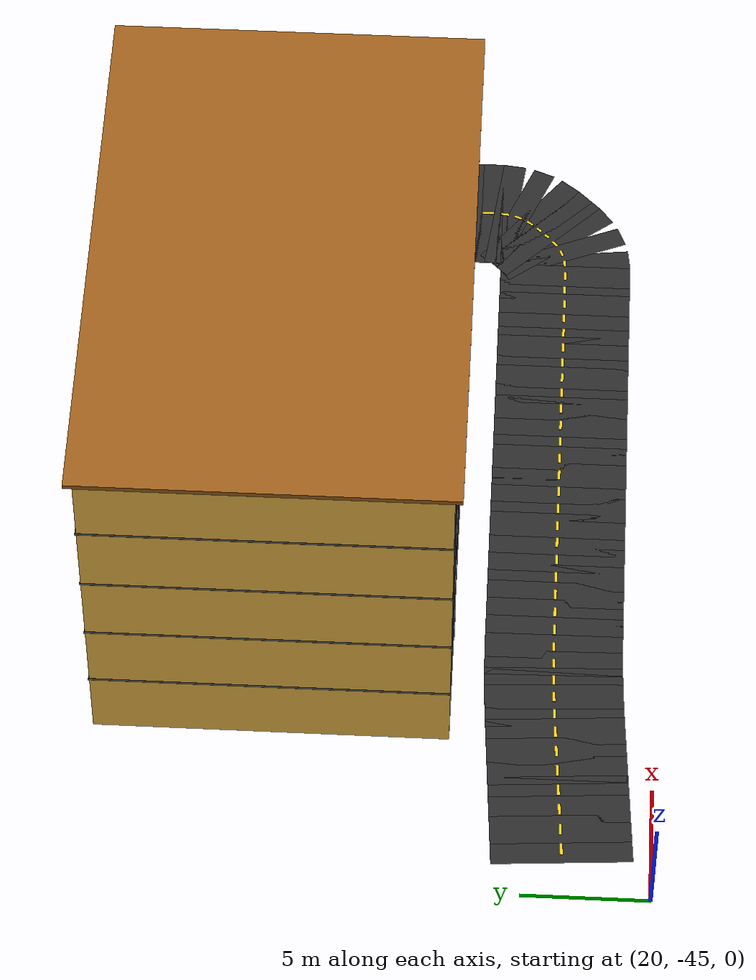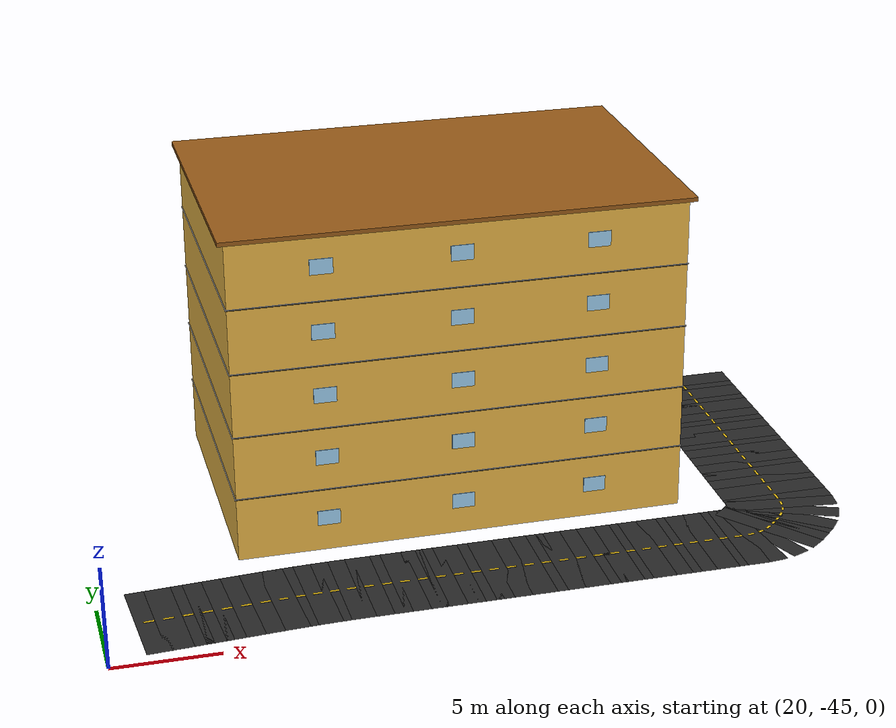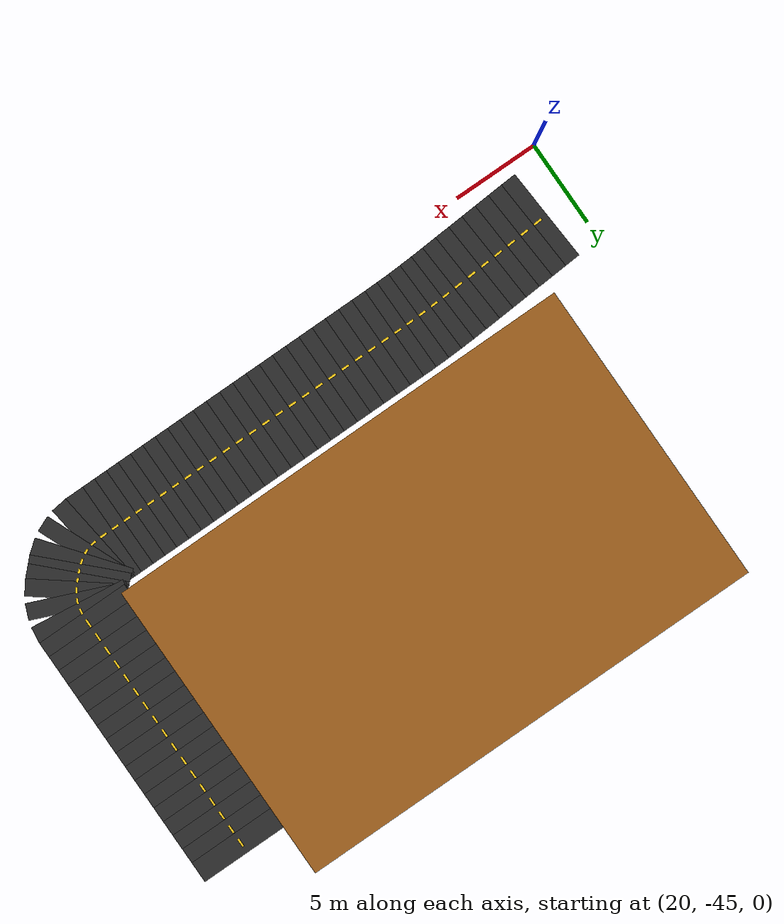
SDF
<sdf version="1.7">
 <world name="campus_delivery">
  <model name="campus_roads">
   <static>true</static>
   <link name="south_service_loop_0097">
    <pose>54.000 -23.387 0.002 0 0 -1.570796</pose>
    <visual name="visual">
     <geometry><box><size>1.239 5.500 0.004</size></box></geometry>
     <material><ambient>0.160 0.160 0.160 1.000</ambient><diffuse>0.160 0.160 0.160 1.000</diffuse></material>
    </visual>
    <visual name="center_line">
     <pose>0 0 0.008 0 0 0</pose>
     <geometry><box><size>0.489 0.120 0.012</size></box></geometry>
     <material><ambient>0.950 0.780 0.080 1.000</ambient><diffuse>0.950 0.780 0.080 1.000</diffuse></material>
    </visual>
   </link>
   <link name="south_service_loop_0098">
    <pose>54.000 -24.276 0.002 0 0 -1.570796</pose>
    <visual name="visual">
     <geometry><box><size>1.239 5.500 0.004</size></box></geometry>
     <material><ambient>0.160 0.160 0.160 1.000</ambient><diffuse>0.160 0.160 0.160 1.000</diffuse></material>
    </visual>
    <visual name="center_line">
     <pose>0 0 0.008 0 0 0</pose>
     <geometry><box><size>0.489 0.120 0.012</size></box></geometry>
     <material><ambient>0.950 0.780 0.080 1.000</ambient><diffuse>0.950 0.780 0.080 1.000</diffuse></material>
    </visual>
   </link>
   <link name="south_service_loop_0099">
    <pose>54.000 -25.166 0.002 0 0 -1.570796</pose>
    <visual name="visual">
     <geometry><box><size>1.239 5.500 0.004</size></box></geometry>
     <material><ambient>0.160 0.160 0.160 1.000</ambient><diffuse>0.160 0.160 0.160 1.000</diffuse></material>
    </visual>
    <visual name="center_line">
     <pose>0 0 0.008 0 0 0</pose>
     <geometry><box><size>0.489 0.120 0.012</size></box></geometry>
     <material><ambient>0.950 0.780 0.080 1.000</ambient><diffuse>0.950 0.780 0.080 1.000</diffuse></material>
    </visual>
   </link>
   <link name="south_service_loop_0100">
    <pose>54.000 -26.055 0.002 0 0 -1.570796</pose>
    <visual name="visual">
     <geometry><box><size>1.239 5.500 0.004</size></box></geometry>
     <material><ambient>0.160 0.160 0.160 1.000</ambient><diffuse>0.160 0.160 0.160 1.000</diffuse></material>
    </visual>
    <visual name="center_line">
     <pose>0 0 0.008 0 0 0</pose>
     <geometry><box><size>0.489 0.120 0.012</size></box></geometry>
     <material><ambient>0.950 0.780 0.080 1.000</ambient><diffuse>0.950 0.780 0.080 1.000</diffuse></material>
    </visual>
   </link>
   <link name="south_service_loop_0101">
    <pose>54.000 -26.944 0.002 0 0 -1.570796</pose>
    <visual name="visual">
     <geometry><box><size>1.239 5.500 0.004</size></box></geometry>
     <material><ambient>0.160 0.160 0.160 1.000</ambient><diffuse>0.160 0.160 0.160 1.000</diffuse></material>
    </visual>
    <visual name="center_line">
     <pose>0 0 0.008 0 0 0</pose>
     <geometry><box><size>0.489 0.120 0.012</size></box></geometry>
     <material><ambient>0.950 0.780 0.080 1.000</ambient><diffuse>0.950 0.780 0.080 1.000</diffuse></material>
    </visual>
   </link>
   <link name="south_service_loop_0102">
    <pose>54.000 -27.833 0.002 0 0 -1.570796</pose>
    <visual name="visual">
     <geometry><box><size>1.239 5.500 0.004</size></box></geometry>
     <material><ambient>0.160 0.160 0.160 1.000</ambient><diffuse>0.160 0.160 0.160 1.000</diffuse></material>
    </visual>
    <visual name="center_line">
     <pose>0 0 0.008 0 0 0</pose>
     <geometry><box><size>0.489 0.120 0.012</size></box></geometry>
     <material><ambient>0.950 0.780 0.080 1.000</ambient><diffuse>0.950 0.780 0.080 1.000</diffuse></material>
    </visual>
   </link>
   <link name="south_service_loop_0103">
    <pose>54.000 -28.722 0.002 0 0 -1.570796</pose>
    <visual name="visual">
     <geometry><box><size>1.239 5.500 0.004</size></box></geometry>
     <material><ambient>0.160 0.160 0.160 1.000</ambient><diffuse>0.160 0.160 0.160 1.000</diffuse></material>
    </visual>
    <visual name="center_line">
     <pose>0 0 0.008 0 0 0</pose>
     <geometry><box><size>0.489 0.120 0.012</size></box></geometry>
     <material><ambient>0.950 0.780 0.080 1.000</ambient><diffuse>0.950 0.780 0.080 1.000</diffuse></material>
    </visual>
   </link>
   <link name="south_service_loop_0104">
    <pose>54.000 -29.611 0.002 0 0 -1.570796</pose>
    <visual name="visual">
     <geometry><box><size>1.239 5.500 0.004</size></box></geometry>
     <material><ambient>0.160 0.160 0.160 1.000</ambient><diffuse>0.160 0.160 0.160 1.000</diffuse></material>
    </visual>
    <visual name="center_line">
     <pose>0 0 0.008 0 0 0</pose>
     <geometry><box><size>0.489 0.120 0.012</size></box></geometry>
     <material><ambient>0.950 0.780 0.080 1.000</ambient><diffuse>0.950 0.780 0.080 1.000</diffuse></material>
    </visual>
   </link>
   <link name="south_service_loop_0105">
    <pose>54.000 -30.500 0.002 0 0 -1.570796</pose>
    <visual name="visual">
     <geometry><box><size>1.239 5.500 0.004</size></box></geometry>
     <material><ambient>0.160 0.160 0.160 1.000</ambient><diffuse>0.160 0.160 0.160 1.000</diffuse></material>
    </visual>
    <visual name="center_line">
     <pose>0 0 0.008 0 0 0</pose>
     <geometry><box><size>0.489 0.120 0.012</size></box></geometry>
     <material><ambient>0.950 0.780 0.080 1.000</ambient><diffuse>0.950 0.780 0.080 1.000</diffuse></material>
    </visual>
   </link>
   <link name="south_service_loop_0106">
    <pose>54.000 -31.389 0.002 0 0 -1.570796</pose>
    <visual name="visual">
     <geometry><box><size>1.239 5.500 0.004</size></box></geometry>
     <material><ambient>0.160 0.160 0.160 1.000</ambient><diffuse>0.160 0.160 0.160 1.000</diffuse></material>
    </visual>
    <visual name="center_line">
     <pose>0 0 0.008 0 0 0</pose>
     <geometry><box><size>0.489 0.120 0.012</size></box></geometry>
     <material><ambient>0.950 0.780 0.080 1.000</ambient><diffuse>0.950 0.780 0.080 1.000</diffuse></material>
    </visual>
   </link>
   <link name="south_service_loop_0107">
    <pose>54.000 -32.278 0.002 0 0 -1.570796</pose>
    <visual name="visual">
     <geometry><box><size>1.239 5.500 0.004</size></box></geometry>
     <material><ambient>0.160 0.160 0.160 1.000</ambient><diffuse>0.160 0.160 0.160 1.000</diffuse></material>
    </visual>
    <visual name="center_line">
     <pose>0 0 0.008 0 0 0</pose>
     <geometry><box><size>0.489 0.120 0.012</size></box></geometry>
     <material><ambient>0.950 0.780 0.080 1.000</ambient><diffuse>0.950 0.780 0.080 1.000</diffuse></material>
    </visual>
   </link>
   <link name="south_service_loop_0108">
    <pose>54.000 -33.167 0.002 0 0 -1.570796</pose>
    <visual name="visual">
     <geometry><box><size>1.239 5.500 0.004</size></box></geometry>
     <material><ambient>0.160 0.160 0.160 1.000</ambient><diffuse>0.160 0.160 0.160 1.000</diffuse></material>
    </visual>
    <visual name="center_line">
     <pose>0 0 0.008 0 0 0</pose>
     <geometry><box><size>0.489 0.120 0.012</size></box></geometry>
     <material><ambient>0.950 0.780 0.080 1.000</ambient><diffuse>0.950 0.780 0.080 1.000</diffuse></material>
    </visual>
   </link>
   <link name="south_service_loop_0109">
    <pose>54.000 -34.056 0.002 0 0 -1.570796</pose>
    <visual name="visual">
     <geometry><box><size>1.239 5.500 0.004</size></box></geometry>
     <material><ambient>0.160 0.160 0.160 1.000</ambient><diffuse>0.160 0.160 0.160 1.000</diffuse></material>
    </visual>
    <visual name="center_line">
     <pose>0 0 0.008 0 0 0</pose>
     <geometry><box><size>0.489 0.120 0.012</size></box></geometry>
     <material><ambient>0.950 0.780 0.080 1.000</ambient><diffuse>0.950 0.780 0.080 1.000</diffuse></material>
    </visual>
   </link>
   <link name="south_service_loop_0110">
    <pose>54.000 -34.945 0.002 0 0 -1.570796</pose>
    <visual name="visual">
     <geometry><box><size>1.239 5.500 0.004</size></box></geometry>
     <material><ambient>0.160 0.160 0.160 1.000</ambient><diffuse>0.160 0.160 0.160 1.000</diffuse></material>
    </visual>
    <visual name="center_line">
     <pose>0 0 0.008 0 0 0</pose>
     <geometry><box><size>0.489 0.120 0.012</size></box></geometry>
     <material><ambient>0.950 0.780 0.080 1.000</ambient><diffuse>0.950 0.780 0.080 1.000</diffuse></material>
    </visual>
   </link>
   <link name="south_service_loop_0111">
    <pose>54.000 -35.834 0.002 0 0 -1.570796</pose>
    <visual name="visual">
     <geometry><box><size>1.239 5.500 0.004</size></box></geometry>
     <material><ambient>0.160 0.160 0.160 1.000</ambient><diffuse>0.160 0.160 0.160 1.000</diffuse></material>
    </visual>
    <visual name="center_line">
     <pose>0 0 0.008 0 0 0</pose>
     <geometry><box><size>0.489 0.120 0.012</size></box></geometry>
     <material><ambient>0.950 0.780 0.080 1.000</ambient><diffuse>0.950 0.780 0.080 1.000</diffuse></material>
    </visual>
   </link>
   <link name="south_service_loop_0112">
    <pose>54.000 -36.724 0.002 0 0 -1.570796</pose>
    <visual name="visual">
     <geometry><box><size>1.239 5.500 0.004</size></box></geometry>
     <material><ambient>0.160 0.160 0.160 1.000</ambient><diffuse>0.160 0.160 0.160 1.000</diffuse></material>
    </visual>
    <visual name="center_line">
     <pose>0 0 0.008 0 0 0</pose>
     <geometry><box><size>0.489 0.120 0.012</size></box></geometry>
     <material><ambient>0.950 0.780 0.080 1.000</ambient><diffuse>0.950 0.780 0.080 1.000</diffuse></material>
    </visual>
   </link>
   <link name="south_service_loop_0113">
    <pose>54.000 -37.613 0.002 0 0 -1.570796</pose>
    <visual name="visual">
     <geometry><box><size>1.239 5.500 0.004</size></box></geometry>
     <material><ambient>0.160 0.160 0.160 1.000</ambient><diffuse>0.160 0.160 0.160 1.000</diffuse></material>
    </visual>
    <visual name="center_line">
     <pose>0 0 0.008 0 0 0</pose>
     <geometry><box><size>0.489 0.120 0.012</size></box></geometry>
     <material><ambient>0.950 0.780 0.080 1.000</ambient><diffuse>0.950 0.780 0.080 1.000</diffuse></material>
    </visual>
   </link>
   <link name="south_service_loop_0114">
    <pose>53.963 -38.356 0.002 0 0 -1.694067</pose>
    <visual name="visual">
     <geometry><box><size>0.952 5.500 0.004</size></box></geometry>
     <material><ambient>0.160 0.160 0.160 1.000</ambient><diffuse>0.160 0.160 0.160 1.000</diffuse></material>
    </visual>
    <visual name="center_line">
     <pose>0 0 0.008 0 0 0</pose>
     <geometry><box><size>0.331 0.120 0.012</size></box></geometry>
     <material><ambient>0.950 0.780 0.080 1.000</ambient><diffuse>0.950 0.780 0.080 1.000</diffuse></material>
    </visual>
   </link>
   <link name="south_service_loop_0115">
    <pose>53.815 -38.923 0.002 0 0 -1.963495</pose>
    <visual name="visual">
     <geometry><box><size>0.931 5.500 0.004</size></box></geometry>
     <material><ambient>0.160 0.160 0.160 1.000</ambient><diffuse>0.160 0.160 0.160 1.000</diffuse></material>
    </visual>
    <visual name="center_line">
     <pose>0 0 0.008 0 0 0</pose>
     <geometry><box><size>0.319 0.120 0.012</size></box></geometry>
     <material><ambient>0.950 0.780 0.080 1.000</ambient><diffuse>0.950 0.780 0.080 1.000</diffuse></material>
    </visual>
   </link>
   <link name="south_service_loop_0116">
    <pose>53.519 -39.429 0.002 0 0 -2.232923</pose>
    <visual name="visual">
     <geometry><box><size>0.952 5.500 0.004</size></box></geometry>
     <material><ambient>0.160 0.160 0.160 1.000</ambient><diffuse>0.160 0.160 0.160 1.000</diffuse></material>
    </visual>
    <visual name="center_line">
     <pose>0 0 0.008 0 0 0</pose>
     <geometry><box><size>0.331 0.120 0.012</size></box></geometry>
     <material><ambient>0.950 0.780 0.080 1.000</ambient><diffuse>0.950 0.780 0.080 1.000</diffuse></material>
    </visual>
   </link>
   <link name="south_service_loop_0117">
    <pose>53.167 -39.833 0.002 0 0 -2.356194</pose>
    <visual name="visual">
     <geometry><box><size>0.821 5.500 0.004</size></box></geometry>
     <material><ambient>0.160 0.160 0.160 1.000</ambient><diffuse>0.160 0.160 0.160 1.000</diffuse></material>
    </visual>
    <visual name="center_line">
     <pose>0 0 0.008 0 0 0</pose>
     <geometry><box><size>0.259 0.120 0.012</size></box></geometry>
     <material><ambient>0.950 0.780 0.080 1.000</ambient><diffuse>0.950 0.780 0.080 1.000</diffuse></material>
    </visual>
   </link>
   <link name="south_service_loop_0118">
    <pose>52.833 -40.167 0.002 0 0 -2.356194</pose>
    <visual name="visual">
     <geometry><box><size>0.821 5.500 0.004</size></box></geometry>
     <material><ambient>0.160 0.160 0.160 1.000</ambient><diffuse>0.160 0.160 0.160 1.000</diffuse></material>
    </visual>
    <visual name="center_line">
     <pose>0 0 0.008 0 0 0</pose>
     <geometry><box><size>0.259 0.120 0.012</size></box></geometry>
     <material><ambient>0.950 0.780 0.080 1.000</ambient><diffuse>0.950 0.780 0.080 1.000</diffuse></material>
    </visual>
   </link>
   <link name="south_service_loop_0119">
    <pose>52.429 -40.519 0.002 0 0 -2.479466</pose>
    <visual name="visual">
     <geometry><box><size>0.952 5.500 0.004</size></box></geometry>
     <material><ambient>0.160 0.160 0.160 1.000</ambient><diffuse>0.160 0.160 0.160 1.000</diffuse></material>
    </visual>
    <visual name="center_line">
     <pose>0 0 0.008 0 0 0</pose>
     <geometry><box><size>0.331 0.120 0.012</size></box></geometry>
     <material><ambient>0.950 0.780 0.080 1.000</ambient><diffuse>0.950 0.780 0.080 1.000</diffuse></material>
    </visual>
   </link>
   <link name="south_service_loop_0120">
    <pose>51.923 -40.815 0.002 0 0 -2.748894</pose>
    <visual name="visual">
     <geometry><box><size>0.931 5.500 0.004</size></box></geometry>
     <material><ambient>0.160 0.160 0.160 1.000</ambient><diffuse>0.160 0.160 0.160 1.000</diffuse></material>
    </visual>
    <visual name="center_line">
     <pose>0 0 0.008 0 0 0</pose>
     <geometry><box><size>0.319 0.120 0.012</size></box></geometry>
     <material><ambient>0.950 0.780 0.080 1.000</ambient><diffuse>0.950 0.780 0.080 1.000</diffuse></material>
    </visual>
   </link>
   <link name="south_service_loop_0121">
    <pose>51.356 -40.963 0.002 0 0 -3.018322</pose>
    <visual name="visual">
     <geometry><box><size>0.952 5.500 0.004</size></box></geometry>
     <material><ambient>0.160 0.160 0.160 1.000</ambient><diffuse>0.160 0.160 0.160 1.000</diffuse></material>
    </visual>
    <visual name="center_line">
     <pose>0 0 0.008 0 0 0</pose>
     <geometry><box><size>0.331 0.120 0.012</size></box></geometry>
     <material><ambient>0.950 0.780 0.080 1.000</ambient><diffuse>0.950 0.780 0.080 1.000</diffuse></material>
    </visual>
   </link>
   <link name="south_service_loop_0122">
    <pose>50.675 -41.000 0.002 0 0 3.141593</pose>
    <visual name="visual">
     <geometry><box><size>1.114 5.500 0.004</size></box></geometry>
     <material><ambient>0.160 0.160 0.160 1.000</ambient><diffuse>0.160 0.160 0.160 1.000</diffuse></material>
    </visual>
    <visual name="center_line">
     <pose>0 0 0.008 0 0 0</pose>
     <geometry><box><size>0.420 0.120 0.012</size></box></geometry>
     <material><ambient>0.950 0.780 0.080 1.000</ambient><diffuse>0.950 0.780 0.080 1.000</diffuse></material>
    </visual>
   </link>
   <link name="south_service_loop_0123">
    <pose>49.911 -41.000 0.002 0 0 3.141593</pose>
    <visual name="visual">
     <geometry><box><size>1.114 5.500 0.004</size></box></geometry>
     <material><ambient>0.160 0.160 0.160 1.000</ambient><diffuse>0.160 0.160 0.160 1.000</diffuse></material>
    </visual>
    <visual name="center_line">
     <pose>0 0 0.008 0 0 0</pose>
     <geometry><box><size>0.420 0.120 0.012</size></box></geometry>
     <material><ambient>0.950 0.780 0.080 1.000</ambient><diffuse>0.950 0.780 0.080 1.000</diffuse></material>
    </visual>
   </link>
   <link name="south_service_loop_0124">
    <pose>49.146 -41.000 0.002 0 0 3.141593</pose>
    <visual name="visual">
     <geometry><box><size>1.114 5.500 0.004</size></box></geometry>
     <material><ambient>0.160 0.160 0.160 1.000</ambient><diffuse>0.160 0.160 0.160 1.000</diffuse></material>
    </visual>
    <visual name="center_line">
     <pose>0 0 0.008 0 0 0</pose>
     <geometry><box><size>0.420 0.120 0.012</size></box></geometry>
     <material><ambient>0.950 0.780 0.080 1.000</ambient><diffuse>0.950 0.780 0.080 1.000</diffuse></material>
    </visual>
   </link>
   <link name="south_service_loop_0125">
    <pose>48.382 -41.000 0.002 0 0 3.141593</pose>
    <visual name="visual">
     <geometry><box><size>1.114 5.500 0.004</size></box></geometry>
     <material><ambient>0.160 0.160 0.160 1.000</ambient><diffuse>0.160 0.160 0.160 1.000</diffuse></material>
    </visual>
    <visual name="center_line">
     <pose>0 0 0.008 0 0 0</pose>
     <geometry><box><size>0.420 0.120 0.012</size></box></geometry>
     <material><ambient>0.950 0.780 0.080 1.000</ambient><diffuse>0.950 0.780 0.080 1.000</diffuse></material>
    </visual>
   </link>
   <link name="south_service_loop_0126">
    <pose>47.600 -41.000 0.002 0 0 -3.141593</pose>
    <visual name="visual">
     <geometry><box><size>1.150 5.500 0.004</size></box></geometry>
     <material><ambient>0.160 0.160 0.160 1.000</ambient><diffuse>0.160 0.160 0.160 1.000</diffuse></material>
    </visual>
    <visual name="center_line">
     <pose>0 0 0.008 0 0 0</pose>
     <geometry><box><size>0.440 0.120 0.012</size></box></geometry>
     <material><ambient>0.950 0.780 0.080 1.000</ambient><diffuse>0.950 0.780 0.080 1.000</diffuse></material>
    </visual>
   </link>
   <link name="south_service_loop_0127">
    <pose>46.800 -41.000 0.002 0 0 3.141593</pose>
    <visual name="visual">
     <geometry><box><size>1.150 5.500 0.004</size></box></geometry>
     <material><ambient>0.160 0.160 0.160 1.000</ambient><diffuse>0.160 0.160 0.160 1.000</diffuse></material>
    </visual>
    <visual name="center_line">
     <pose>0 0 0.008 0 0 0</pose>
     <geometry><box><size>0.440 0.120 0.012</size></box></geometry>
     <material><ambient>0.950 0.780 0.080 1.000</ambient><diffuse>0.950 0.780 0.080 1.000</diffuse></material>
    </visual>
   </link>
   <link name="south_service_loop_0128">
    <pose>46.000 -41.000 0.002 0 0 3.141593</pose>
    <visual name="visual">
     <geometry><box><size>1.150 5.500 0.004</size></box></geometry>
     <material><ambient>0.160 0.160 0.160 1.000</ambient><diffuse>0.160 0.160 0.160 1.000</diffuse></material>
    </visual>
    <visual name="center_line">
     <pose>0 0 0.008 0 0 0</pose>
     <geometry><box><size>0.440 0.120 0.012</size></box></geometry>
     <material><ambient>0.950 0.780 0.080 1.000</ambient><diffuse>0.950 0.780 0.080 1.000</diffuse></material>
    </visual>
   </link>
   <link name="south_service_loop_0129">
    <pose>45.200 -41.000 0.002 0 0 3.141593</pose>
    <visual name="visual">
     <geometry><box><size>1.150 5.500 0.004</size></box></geometry>
     <material><ambient>0.160 0.160 0.160 1.000</ambient><diffuse>0.160 0.160 0.160 1.000</diffuse></material>
    </visual>
    <visual name="center_line">
     <pose>0 0 0.008 0 0 0</pose>
     <geometry><box><size>0.440 0.120 0.012</size></box></geometry>
     <material><ambient>0.950 0.780 0.080 1.000</ambient><diffuse>0.950 0.780 0.080 1.000</diffuse></material>
    </visual>
   </link>
   <link name="south_service_loop_0130">
    <pose>44.400 -41.000 0.002 0 0 3.141593</pose>
    <visual name="visual">
     <geometry><box><size>1.150 5.500 0.004</size></box></geometry>
     <material><ambient>0.160 0.160 0.160 1.000</ambient><diffuse>0.160 0.160 0.160 1.000</diffuse></material>
    </visual>
    <visual name="center_line">
     <pose>0 0 0.008 0 0 0</pose>
     <geometry><box><size>0.440 0.120 0.012</size></box></geometry>
     <material><ambient>0.950 0.780 0.080 1.000</ambient><diffuse>0.950 0.780 0.080 1.000</diffuse></material>
    </visual>
   </link>
   <link name="south_service_loop_0131">
    <pose>43.571 -41.000 0.002 0 0 3.141593</pose>
    <visual name="visual">
     <geometry><box><size>1.207 5.500 0.004</size></box></geometry>
     <material><ambient>0.160 0.160 0.160 1.000</ambient><diffuse>0.160 0.160 0.160 1.000</diffuse></material>
    </visual>
    <visual name="center_line">
     <pose>0 0 0.008 0 0 0</pose>
     <geometry><box><size>0.471 0.120 0.012</size></box></geometry>
     <material><ambient>0.950 0.780 0.080 1.000</ambient><diffuse>0.950 0.780 0.080 1.000</diffuse></material>
    </visual>
   </link>
   <link name="south_service_loop_0132">
    <pose>42.714 -41.000 0.002 0 0 3.141593</pose>
    <visual name="visual">
     <geometry><box><size>1.207 5.500 0.004</size></box></geometry>
     <material><ambient>0.160 0.160 0.160 1.000</ambient><diffuse>0.160 0.160 0.160 1.000</diffuse></material>
    </visual>
    <visual name="center_line">
     <pose>0 0 0.008 0 0 0</pose>
     <geometry><box><size>0.471 0.120 0.012</size></box></geometry>
     <material><ambient>0.950 0.780 0.080 1.000</ambient><diffuse>0.950 0.780 0.080 1.000</diffuse></material>
    </visual>
   </link>
   <link name="south_service_loop_0133">
    <pose>41.857 -41.000 0.002 0 0 3.141593</pose>
    <visual name="visual">
     <geometry><box><size>1.207 5.500 0.004</size></box></geometry>
     <material><ambient>0.160 0.160 0.160 1.000</ambient><diffuse>0.160 0.160 0.160 1.000</diffuse></material>
    </visual>
    <visual name="center_line">
     <pose>0 0 0.008 0 0 0</pose>
     <geometry><box><size>0.471 0.120 0.012</size></box></geometry>
     <material><ambient>0.950 0.780 0.080 1.000</ambient><diffuse>0.950 0.780 0.080 1.000</diffuse></material>
    </visual>
   </link>
   <link name="south_service_loop_0134">
    <pose>41.000 -41.000 0.002 0 0 3.141593</pose>
    <visual name="visual">
     <geometry><box><size>1.207 5.500 0.004</size></box></geometry>
     <material><ambient>0.160 0.160 0.160 1.000</ambient><diffuse>0.160 0.160 0.160 1.000</diffuse></material>
    </visual>
    <visual name="center_line">
     <pose>0 0 0.008 0 0 0</pose>
     <geometry><box><size>0.471 0.120 0.012</size></box></geometry>
     <material><ambient>0.950 0.780 0.080 1.000</ambient><diffuse>0.950 0.780 0.080 1.000</diffuse></material>
    </visual>
   </link>
   <link name="south_service_loop_0135">
    <pose>40.143 -41.000 0.002 0 0 3.141593</pose>
    <visual name="visual">
     <geometry><box><size>1.207 5.500 0.004</size></box></geometry>
     <material><ambient>0.160 0.160 0.160 1.000</ambient><diffuse>0.160 0.160 0.160 1.000</diffuse></material>
    </visual>
    <visual name="center_line">
     <pose>0 0 0.008 0 0 0</pose>
     <geometry><box><size>0.471 0.120 0.012</size></box></geometry>
     <material><ambient>0.950 0.780 0.080 1.000</ambient><diffuse>0.950 0.780 0.080 1.000</diffuse></material>
    </visual>
   </link>
   <link name="south_service_loop_0136">
    <pose>39.286 -41.000 0.002 0 0 3.141593</pose>
    <visual name="visual">
     <geometry><box><size>1.207 5.500 0.004</size></box></geometry>
     <material><ambient>0.160 0.160 0.160 1.000</ambient><diffuse>0.160 0.160 0.160 1.000</diffuse></material>
    </visual>
    <visual name="center_line">
     <pose>0 0 0.008 0 0 0</pose>
     <geometry><box><size>0.471 0.120 0.012</size></box></geometry>
     <material><ambient>0.950 0.780 0.080 1.000</ambient><diffuse>0.950 0.780 0.080 1.000</diffuse></material>
    </visual>
   </link>
   <link name="south_service_loop_0137">
    <pose>38.429 -41.000 0.002 0 0 3.141593</pose>
    <visual name="visual">
     <geometry><box><size>1.207 5.500 0.004</size></box></geometry>
     <material><ambient>0.160 0.160 0.160 1.000</ambient><diffuse>0.160 0.160 0.160 1.000</diffuse></material>
    </visual>
    <visual name="center_line">
     <pose>0 0 0.008 0 0 0</pose>
     <geometry><box><size>0.471 0.120 0.012</size></box></geometry>
     <material><ambient>0.950 0.780 0.080 1.000</ambient><diffuse>0.950 0.780 0.080 1.000</diffuse></material>
    </visual>
   </link>
   <link name="south_service_loop_0138">
    <pose>37.571 -41.000 0.002 0 0 3.141593</pose>
    <visual name="visual">
     <geometry><box><size>1.207 5.500 0.004</size></box></geometry>
     <material><ambient>0.160 0.160 0.160 1.000</ambient><diffuse>0.160 0.160 0.160 1.000</diffuse></material>
    </visual>
    <visual name="center_line">
     <pose>0 0 0.008 0 0 0</pose>
     <geometry><box><size>0.471 0.120 0.012</size></box></geometry>
     <material><ambient>0.950 0.780 0.080 1.000</ambient><diffuse>0.950 0.780 0.080 1.000</diffuse></material>
    </visual>
   </link>
   <link name="south_service_loop_0139">
    <pose>36.714 -41.000 0.002 0 0 3.141593</pose>
    <visual name="visual">
     <geometry><box><size>1.207 5.500 0.004</size></box></geometry>
     <material><ambient>0.160 0.160 0.160 1.000</ambient><diffuse>0.160 0.160 0.160 1.000</diffuse></material>
    </visual>
    <visual name="center_line">
     <pose>0 0 0.008 0 0 0</pose>
     <geometry><box><size>0.471 0.120 0.012</size></box></geometry>
     <material><ambient>0.950 0.780 0.080 1.000</ambient><diffuse>0.950 0.780 0.080 1.000</diffuse></material>
    </visual>
   </link>
   <link name="south_service_loop_0140">
    <pose>35.857 -41.000 0.002 0 0 3.141593</pose>
    <visual name="visual">
     <geometry><box><size>1.207 5.500 0.004</size></box></geometry>
     <material><ambient>0.160 0.160 0.160 1.000</ambient><diffuse>0.160 0.160 0.160 1.000</diffuse></material>
    </visual>
    <visual name="center_line">
     <pose>0 0 0.008 0 0 0</pose>
     <geometry><box><size>0.471 0.120 0.012</size></box></geometry>
     <material><ambient>0.950 0.780 0.080 1.000</ambient><diffuse>0.950 0.780 0.080 1.000</diffuse></material>
    </visual>
   </link>
   <link name="south_service_loop_0141">
    <pose>35.000 -41.000 0.002 0 0 3.141593</pose>
    <visual name="visual">
     <geometry><box><size>1.207 5.500 0.004</size></box></geometry>
     <material><ambient>0.160 0.160 0.160 1.000</ambient><diffuse>0.160 0.160 0.160 1.000</diffuse></material>
    </visual>
    <visual name="center_line">
     <pose>0 0 0.008 0 0 0</pose>
     <geometry><box><size>0.471 0.120 0.012</size></box></geometry>
     <material><ambient>0.950 0.780 0.080 1.000</ambient><diffuse>0.950 0.780 0.080 1.000</diffuse></material>
    </visual>
   </link>
   <link name="south_service_loop_0142">
    <pose>34.143 -41.000 0.002 0 0 3.141593</pose>
    <visual name="visual">
     <geometry><box><size>1.207 5.500 0.004</size></box></geometry>
     <material><ambient>0.160 0.160 0.160 1.000</ambient><diffuse>0.160 0.160 0.160 1.000</diffuse></material>
    </visual>
    <visual name="center_line">
     <pose>0 0 0.008 0 0 0</pose>
     <geometry><box><size>0.471 0.120 0.012</size></box></geometry>
     <material><ambient>0.950 0.780 0.080 1.000</ambient><diffuse>0.950 0.780 0.080 1.000</diffuse></material>
    </visual>
   </link>
   <link name="south_service_loop_0143">
    <pose>33.286 -41.000 0.002 0 0 3.141593</pose>
    <visual name="visual">
     <geometry><box><size>1.207 5.500 0.004</size></box></geometry>
     <material><ambient>0.160 0.160 0.160 1.000</ambient><diffuse>0.160 0.160 0.160 1.000</diffuse></material>
    </visual>
    <visual name="center_line">
     <pose>0 0 0.008 0 0 0</pose>
     <geometry><box><size>0.471 0.120 0.012</size></box></geometry>
     <material><ambient>0.950 0.780 0.080 1.000</ambient><diffuse>0.950 0.780 0.080 1.000</diffuse></material>
    </visual>
   </link>
   <link name="south_service_loop_0144">
    <pose>32.429 -41.000 0.002 0 0 3.141593</pose>
    <visual name="visual">
     <geometry><box><size>1.207 5.500 0.004</size></box></geometry>
     <material><ambient>0.160 0.160 0.160 1.000</ambient><diffuse>0.160 0.160 0.160 1.000</diffuse></material>
    </visual>
    <visual name="center_line">
     <pose>0 0 0.008 0 0 0</pose>
     <geometry><box><size>0.471 0.120 0.012</size></box></geometry>
     <material><ambient>0.950 0.780 0.080 1.000</ambient><diffuse>0.950 0.780 0.080 1.000</diffuse></material>
    </visual>
   </link>
   <link name="south_service_loop_0145">
    <pose>31.600 -41.003 0.002 0 0 -3.134939</pose>
    <visual name="visual">
     <geometry><box><size>1.150 5.500 0.004</size></box></geometry>
     <material><ambient>0.160 0.160 0.160 1.000</ambient><diffuse>0.160 0.160 0.160 1.000</diffuse></material>
    </visual>
    <visual name="center_line">
     <pose>0 0 0.008 0 0 0</pose>
     <geometry><box><size>0.440 0.120 0.012</size></box></geometry>
     <material><ambient>0.950 0.780 0.080 1.000</ambient><diffuse>0.950 0.780 0.080 1.000</diffuse></material>
    </visual>
   </link>
   <link name="south_service_loop_0146">
    <pose>30.800 -41.013 0.002 0 0 -3.121626</pose>
    <visual name="visual">
     <geometry><box><size>1.150 5.500 0.004</size></box></geometry>
     <material><ambient>0.160 0.160 0.160 1.000</ambient><diffuse>0.160 0.160 0.160 1.000</diffuse></material>
    </visual>
    <visual name="center_line">
     <pose>0 0 0.008 0 0 0</pose>
     <geometry><box><size>0.440 0.120 0.012</size></box></geometry>
     <material><ambient>0.950 0.780 0.080 1.000</ambient><diffuse>0.950 0.780 0.080 1.000</diffuse></material>
    </visual>
   </link>
   <link name="south_service_loop_0147">
    <pose>30.001 -41.035 0.002 0 0 -3.108309</pose>
    <visual name="visual">
     <geometry><box><size>1.150 5.500 0.004</size></box></geometry>
     <material><ambient>0.160 0.160 0.160 1.000</ambient><diffuse>0.160 0.160 0.160 1.000</diffuse></material>
    </visual>
    <visual name="center_line">
     <pose>0 0 0.008 0 0 0</pose>
     <geometry><box><size>0.440 0.120 0.012</size></box></geometry>
     <material><ambient>0.950 0.780 0.080 1.000</ambient><diffuse>0.950 0.780 0.080 1.000</diffuse></material>
    </visual>
   </link>
   <link name="south_service_loop_0148">
    <pose>29.202 -41.067 0.002 0 0 -3.094991</pose>
    <visual name="visual">
     <geometry><box><size>1.150 5.500 0.004</size></box></geometry>
     <material><ambient>0.160 0.160 0.160 1.000</ambient><diffuse>0.160 0.160 0.160 1.000</diffuse></material>
    </visual>
    <visual name="center_line">
     <pose>0 0 0.008 0 0 0</pose>
     <geometry><box><size>0.440 0.120 0.012</size></box></geometry>
     <material><ambient>0.950 0.780 0.080 1.000</ambient><diffuse>0.950 0.780 0.080 1.000</diffuse></material>
    </visual>
   </link>
   <link name="south_service_loop_0149">
    <pose>28.404 -41.109 0.002 0 0 -3.081678</pose>
    <visual name="visual">
     <geometry><box><size>1.150 5.500 0.004</size></box></geometry>
     <material><ambient>0.160 0.160 0.160 1.000</ambient><diffuse>0.160 0.160 0.160 1.000</diffuse></material>
    </visual>
    <visual name="center_line">
     <pose>0 0 0.008 0 0 0</pose>
     <geometry><box><size>0.440 0.120 0.012</size></box></geometry>
     <material><ambient>0.950 0.780 0.080 1.000</ambient><diffuse>0.950 0.780 0.080 1.000</diffuse></material>
    </visual>
   </link>
   <link name="south_service_loop_0150">
    <pose>27.556 -41.163 0.002 0 0 -3.075024</pose>
    <visual name="visual">
     <geometry><box><size>1.249 5.500 0.004</size></box></geometry>
     <material><ambient>0.160 0.160 0.160 1.000</ambient><diffuse>0.160 0.160 0.160 1.000</diffuse></material>
    </visual>
    <visual name="center_line">
     <pose>0 0 0.008 0 0 0</pose>
     <geometry><box><size>0.494 0.120 0.012</size></box></geometry>
     <material><ambient>0.950 0.780 0.080 1.000</ambient><diffuse>0.950 0.780 0.080 1.000</diffuse></material>
    </visual>
   </link>
   <link name="south_service_loop_0151">
    <pose>26.659 -41.223 0.002 0 0 -3.075024</pose>
    <visual name="visual">
     <geometry><box><size>1.249 5.500 0.004</size></box></geometry>
     <material><ambient>0.160 0.160 0.160 1.000</ambient><diffuse>0.160 0.160 0.160 1.000</diffuse></material>
    </visual>
    <visual name="center_line">
     <pose>0 0 0.008 0 0 0</pose>
     <geometry><box><size>0.494 0.120 0.012</size></box></geometry>
     <material><ambient>0.950 0.780 0.080 1.000</ambient><diffuse>0.950 0.780 0.080 1.000</diffuse></material>
    </visual>
   </link>
   <link name="south_service_loop_0152">
    <pose>25.762 -41.283 0.002 0 0 -3.075024</pose>
    <visual name="visual">
     <geometry><box><size>1.249 5.500 0.004</size></box></geometry>
     <material><ambient>0.160 0.160 0.160 1.000</ambient><diffuse>0.160 0.160 0.160 1.000</diffuse></material>
    </visual>
    <visual name="center_line">
     <pose>0 0 0.008 0 0 0</pose>
     <geometry><box><size>0.494 0.120 0.012</size></box></geometry>
     <material><ambient>0.950 0.780 0.080 1.000</ambient><diffuse>0.950 0.780 0.080 1.000</diffuse></material>
    </visual>
   </link>
   <link name="south_service_loop_0153">
    <pose>24.865 -41.342 0.002 0 0 -3.075024</pose>
    <visual name="visual">
     <geometry><box><size>1.249 5.500 0.004</size></box></geometry>
     <material><ambient>0.160 0.160 0.160 1.000</ambient><diffuse>0.160 0.160 0.160 1.000</diffuse></material>
    </visual>
    <visual name="center_line">
     <pose>0 0 0.008 0 0 0</pose>
     <geometry><box><size>0.494 0.120 0.012</size></box></geometry>
     <material><ambient>0.950 0.780 0.080 1.000</ambient><diffuse>0.950 0.780 0.080 1.000</diffuse></material>
    </visual>
   </link>
   <link name="south_service_loop_0154">
    <pose>23.969 -41.402 0.002 0 0 -3.075024</pose>
    <visual name="visual">
     <geometry><box><size>1.249 5.500 0.004</size></box></geometry>
     <material><ambient>0.160 0.160 0.160 1.000</ambient><diffuse>0.160 0.160 0.160 1.000</diffuse></material>
    </visual>
    <visual name="center_line">
     <pose>0 0 0.008 0 0 0</pose>
     <geometry><box><size>0.494 0.120 0.012</size></box></geometry>
     <material><ambient>0.950 0.780 0.080 1.000</ambient><diffuse>0.950 0.780 0.080 1.000</diffuse></material>
    </visual>
   </link>
   <link name="south_service_loop_0155">
    <pose>23.072 -41.462 0.002 0 0 -3.075024</pose>
    <visual name="visual">
     <geometry><box><size>1.249 5.500 0.004</size></box></geometry>
     <material><ambient>0.160 0.160 0.160 1.000</ambient><diffuse>0.160 0.160 0.160 1.000</diffuse></material>
    </visual>
    <visual name="center_line">
     <pose>0 0 0.008 0 0 0</pose>
     <geometry><box><size>0.494 0.120 0.012</size></box></geometry>
     <material><ambient>0.950 0.780 0.080 1.000</ambient><diffuse>0.950 0.780 0.080 1.000</diffuse></material>
    </visual>
   </link>
   <link name="south_service_loop_0156">
    <pose>22.175 -41.522 0.002 0 0 -3.075024</pose>
    <visual name="visual">
     <geometry><box><size>1.249 5.500 0.004</size></box></geometry>
     <material><ambient>0.160 0.160 0.160 1.000</ambient><diffuse>0.160 0.160 0.160 1.000</diffuse></material>
    </visual>
    <visual name="center_line">
     <pose>0 0 0.008 0 0 0</pose>
     <geometry><box><size>0.494 0.120 0.012</size></box></geometry>
     <material><ambient>0.950 0.780 0.080 1.000</ambient><diffuse>0.950 0.780 0.080 1.000</diffuse></material>
    </visual>
   </link>
  </model>
  <model name="cafeteria">
   <static>true</static>
   <pose>38.000 -30.000 0 0 0 0</pose>
   <link name="body">
    <visual name="body">
     <pose>0 0 8.000 0 0 0</pose>
     <geometry><box><size>22.000 14.000 16.000</size></box></geometry>
     <material><ambient>0.920 0.720 0.280 1.000</ambient><diffuse>0.920 0.720 0.280 1.000</diffuse></material>
    </visual>
    <collision name="body_collision">
     <pose>0 0 8.000 0 0 0</pose>
     <geometry><box><size>22.000 14.000 16.000</size></box></geometry>
    </collision>
    <visual name="roof">
     <pose>0 0 16.100 0 0 0</pose>
     <geometry><box><size>22.600 14.600 0.200</size></box></geometry>
     <material><ambient>0.600 0.360 0.100 1.000</ambient><diffuse>0.600 0.360 0.100 1.000</diffuse></material>
    </visual>
    <visual name="floor_sep_n_1">
     <pose>0 7.018 3.200 0 0 0</pose>
     <geometry><box><size>22.100 0.035 0.060</size></box></geometry>
     <material><ambient>0.080 0.080 0.080 1.000</ambient><diffuse>0.080 0.080 0.080 1.000</diffuse></material>
    </visual>
    <visual name="floor_sep_s_1">
     <pose>0 -7.018 3.200 0 0 0</pose>
     <geometry><box><size>22.100 0.035 0.060</size></box></geometry>
     <material><ambient>0.080 0.080 0.080 1.000</ambient><diffuse>0.080 0.080 0.080 1.000</diffuse></material>
    </visual>
    <visual name="floor_sep_e_1">
     <pose>11.018 0 3.200 0 0 0</pose>
     <geometry><box><size>0.035 14.100 0.060</size></box></geometry>
     <material><ambient>0.080 0.080 0.080 1.000</ambient><diffuse>0.080 0.080 0.080 1.000</diffuse></material>
    </visual>
    <visual name="floor_sep_w_1">
     <pose>-11.018 0 3.200 0 0 0</pose>
     <geometry><box><size>0.035 14.100 0.060</size></box></geometry>
     <material><ambient>0.080 0.080 0.080 1.000</ambient><diffuse>0.080 0.080 0.080 1.000</diffuse></material>
    </visual>
    <visual name="floor_sep_n_2">
     <pose>0 7.018 6.400 0 0 0</pose>
     <geometry><box><size>22.100 0.035 0.060</size></box></geometry>
     <material><ambient>0.080 0.080 0.080 1.000</ambient><diffuse>0.080 0.080 0.080 1.000</diffuse></material>
    </visual>
    <visual name="floor_sep_s_2">
     <pose>0 -7.018 6.400 0 0 0</pose>
     <geometry><box><size>22.100 0.035 0.060</size></box></geometry>
     <material><ambient>0.080 0.080 0.080 1.000</ambient><diffuse>0.080 0.080 0.080 1.000</diffuse></material>
    </visual>
    <visual name="floor_sep_e_2">
     <pose>11.018 0 6.400 0 0 0</pose>
     <geometry><box><size>0.035 14.100 0.060</size></box></geometry>
     <material><ambient>0.080 0.080 0.080 1.000</ambient><diffuse>0.080 0.080 0.080 1.000</diffuse></material>
    </visual>
    <visual name="floor_sep_w_2">
     <pose>-11.018 0 6.400 0 0 0</pose>
     <geometry><box><size>0.035 14.100 0.060</size></box></geometry>
     <material><ambient>0.080 0.080 0.080 1.000</ambient><diffuse>0.080 0.080 0.080 1.000</diffuse></material>
    </visual>
    <visual name="floor_sep_n_3">
     <pose>0 7.018 9.600 0 0 0</pose>
     <geometry><box><size>22.100 0.035 0.060</size></box></geometry>
     <material><ambient>0.080 0.080 0.080 1.000</ambient><diffuse>0.080 0.080 0.080 1.000</diffuse></material>
    </visual>
    <visual name="floor_sep_s_3">
     <pose>0 -7.018 9.600 0 0 0</pose>
     <geometry><box><size>22.100 0.035 0.060</size></box></geometry>
     <material><ambient>0.080 0.080 0.080 1.000</ambient><diffuse>0.080 0.080 0.080 1.000</diffuse></material>
    </visual>
    <visual name="floor_sep_e_3">
     <pose>11.018 0 9.600 0 0 0</pose>
     <geometry><box><size>0.035 14.100 0.060</size></box></geometry>
     <material><ambient>0.080 0.080 0.080 1.000</ambient><diffuse>0.080 0.080 0.080 1.000</diffuse></material>
    </visual>
    <visual name="floor_sep_w_3">
     <pose>-11.018 0 9.600 0 0 0</pose>
     <geometry><box><size>0.035 14.100 0.060</size></box></geometry>
     <material><ambient>0.080 0.080 0.080 1.000</ambient><diffuse>0.080 0.080 0.080 1.000</diffuse></material>
    </visual>
    <visual name="floor_sep_n_4">
     <pose>0 7.018 12.800 0 0 0</pose>
     <geometry><box><size>22.100 0.035 0.060</size></box></geometry>
     <material><ambient>0.080 0.080 0.080 1.000</ambient><diffuse>0.080 0.080 0.080 1.000</diffuse></material>
    </visual>
    <visual name="floor_sep_s_4">
     <pose>0 -7.018 12.800 0 0 0</pose>
     <geometry><box><size>22.100 0.035 0.060</size></box></geometry>
     <material><ambient>0.080 0.080 0.080 1.000</ambient><diffuse>0.080 0.080 0.080 1.000</diffuse></material>
    </visual>
    <visual name="floor_sep_e_4">
     <pose>11.018 0 12.800 0 0 0</pose>
     <geometry><box><size>0.035 14.100 0.060</size></box></geometry>
     <material><ambient>0.080 0.080 0.080 1.000</ambient><diffuse>0.080 0.080 0.080 1.000</diffuse></material>
    </visual>
    <visual name="floor_sep_w_4">
     <pose>-11.018 0 12.800 0 0 0</pose>
     <geometry><box><size>0.035 14.100 0.060</size></box></geometry>
     <material><ambient>0.080 0.080 0.080 1.000</ambient><diffuse>0.080 0.080 0.080 1.000</diffuse></material>
    </visual>
    <visual name="front_door">
     <pose>0 7.012 1.2 0 0 0</pose>
     <geometry><box><size>3.000 0.050 2.400</size></box></geometry>
     <material><ambient>0.080 0.060 0.040 1.000</ambient><diffuse>0.080 0.060 0.040 1.000</diffuse></material>
    </visual>
    <visual name="win_n_1_-6.6">
     <pose>-6.600 7.020 1.700 0 0 0</pose>
     <geometry><box><size>1.100 0.035 0.750</size></box></geometry>
     <material><ambient>0.620 0.820 0.950 1.000</ambient><diffuse>0.620 0.820 0.950 1.000</diffuse></material>
    </visual>
    <visual name="win_s_1_-6.6">
     <pose>-6.600 -7.020 1.700 0 0 0</pose>
     <geometry><box><size>1.100 0.035 0.750</size></box></geometry>
     <material><ambient>0.620 0.820 0.950 1.000</ambient><diffuse>0.620 0.820 0.950 1.000</diffuse></material>
    </visual>
    <visual name="win_n_1_0.0">
     <pose>0.000 7.020 1.700 0 0 0</pose>
     <geometry><box><size>1.100 0.035 0.750</size></box></geometry>
     <material><ambient>0.620 0.820 0.950 1.000</ambient><diffuse>0.620 0.820 0.950 1.000</diffuse></material>
    </visual>
    <visual name="win_s_1_0.0">
     <pose>0.000 -7.020 1.700 0 0 0</pose>
     <geometry><box><size>1.100 0.035 0.750</size></box></geometry>
     <material><ambient>0.620 0.820 0.950 1.000</ambient><diffuse>0.620 0.820 0.950 1.000</diffuse></material>
    </visual>
    <visual name="win_n_1_6.6">
     <pose>6.600 7.020 1.700 0 0 0</pose>
     <geometry><box><size>1.100 0.035 0.750</size></box></geometry>
     <material><ambient>0.620 0.820 0.950 1.000</ambient><diffuse>0.620 0.820 0.950 1.000</diffuse></material>
    </visual>
    <visual name="win_s_1_6.6">
     <pose>6.600 -7.020 1.700 0 0 0</pose>
     <geometry><box><size>1.100 0.035 0.750</size></box></geometry>
     <material><ambient>0.620 0.820 0.950 1.000</ambient><diffuse>0.620 0.820 0.950 1.000</diffuse></material>
    </visual>
    <visual name="win_n_2_-6.6">
     <pose>-6.600 7.020 4.900 0 0 0</pose>
     <geometry><box><size>1.100 0.035 0.750</size></box></geometry>
     <material><ambient>0.620 0.820 0.950 1.000</ambient><diffuse>0.620 0.820 0.950 1.000</diffuse></material>
    </visual>
    <visual name="win_s_2_-6.6">
     <pose>-6.600 -7.020 4.900 0 0 0</pose>
     <geometry><box><size>1.100 0.035 0.750</size></box></geometry>
     <material><ambient>0.620 0.820 0.950 1.000</ambient><diffuse>0.620 0.820 0.950 1.000</diffuse></material>
    </visual>
    <visual name="win_n_2_0.0">
     <pose>0.000 7.020 4.900 0 0 0</pose>
     <geometry><box><size>1.100 0.035 0.750</size></box></geometry>
     <material><ambient>0.620 0.820 0.950 1.000</ambient><diffuse>0.620 0.820 0.950 1.000</diffuse></material>
    </visual>
    <visual name="win_s_2_0.0">
     <pose>0.000 -7.020 4.900 0 0 0</pose>
     <geometry><box><size>1.100 0.035 0.750</size></box></geometry>
     <material><ambient>0.620 0.820 0.950 1.000</ambient><diffuse>0.620 0.820 0.950 1.000</diffuse></material>
    </visual>
    <visual name="win_n_2_6.6">
     <pose>6.600 7.020 4.900 0 0 0</pose>
     <geometry><box><size>1.100 0.035 0.750</size></box></geometry>
     <material><ambient>0.620 0.820 0.950 1.000</ambient><diffuse>0.620 0.820 0.950 1.000</diffuse></material>
    </visual>
    <visual name="win_s_2_6.6">
     <pose>6.600 -7.020 4.900 0 0 0</pose>
     <geometry><box><size>1.100 0.035 0.750</size></box></geometry>
     <material><ambient>0.620 0.820 0.950 1.000</ambient><diffuse>0.620 0.820 0.950 1.000</diffuse></material>
    </visual>
    <visual name="win_n_3_-6.6">
     <pose>-6.600 7.020 8.100 0 0 0</pose>
     <geometry><box><size>1.100 0.035 0.750</size></box></geometry>
     <material><ambient>0.620 0.820 0.950 1.000</ambient><diffuse>0.620 0.820 0.950 1.000</diffuse></material>
    </visual>
    <visual name="win_s_3_-6.6">
     <pose>-6.600 -7.020 8.100 0 0 0</pose>
     <geometry><box><size>1.100 0.035 0.750</size></box></geometry>
     <material><ambient>0.620 0.820 0.950 1.000</ambient><diffuse>0.620 0.820 0.950 1.000</diffuse></material>
    </visual>
    <visual name="win_n_3_0.0">
     <pose>0.000 7.020 8.100 0 0 0</pose>
     <geometry><box><size>1.100 0.035 0.750</size></box></geometry>
     <material><ambient>0.620 0.820 0.950 1.000</ambient><diffuse>0.620 0.820 0.950 1.000</diffuse></material>
    </visual>
    <visual name="win_s_3_0.0">
     <pose>0.000 -7.020 8.100 0 0 0</pose>
     <geometry><box><size>1.100 0.035 0.750</size></box></geometry>
     <material><ambient>0.620 0.820 0.950 1.000</ambient><diffuse>0.620 0.820 0.950 1.000</diffuse></material>
    </visual>
    <visual name="win_n_3_6.6">
     <pose>6.600 7.020 8.100 0 0 0</pose>
     <geometry><box><size>1.100 0.035 0.750</size></box></geometry>
     <material><ambient>0.620 0.820 0.950 1.000</ambient><diffuse>0.620 0.820 0.950 1.000</diffuse></material>
    </visual>
    <visual name="win_s_3_6.6">
     <pose>6.600 -7.020 8.100 0 0 0</pose>
     <geometry><box><size>1.100 0.035 0.750</size></box></geometry>
     <material><ambient>0.620 0.820 0.950 1.000</ambient><diffuse>0.620 0.820 0.950 1.000</diffuse></material>
    </visual>
    <visual name="win_n_4_-6.6">
     <pose>-6.600 7.020 11.300 0 0 0</pose>
     <geometry><box><size>1.100 0.035 0.750</size></box></geometry>
     <material><ambient>0.620 0.820 0.950 1.000</ambient><diffuse>0.620 0.820 0.950 1.000</diffuse></material>
    </visual>
    <visual name="win_s_4_-6.6">
     <pose>-6.600 -7.020 11.300 0 0 0</pose>
     <geometry><box><size>1.100 0.035 0.750</size></box></geometry>
     <material><ambient>0.620 0.820 0.950 1.000</ambient><diffuse>0.620 0.820 0.950 1.000</diffuse></material>
    </visual>
    <visual name="win_n_4_0.0">
     <pose>0.000 7.020 11.300 0 0 0</pose>
     <geometry><box><size>1.100 0.035 0.750</size></box></geometry>
     <material><ambient>0.620 0.820 0.950 1.000</ambient><diffuse>0.620 0.820 0.950 1.000</diffuse></material>
    </visual>
    <visual name="win_s_4_0.0">
     <pose>0.000 -7.020 11.300 0 0 0</pose>
     <geometry><box><size>1.100 0.035 0.750</size></box></geometry>
     <material><ambient>0.620 0.820 0.950 1.000</ambient><diffuse>0.620 0.820 0.950 1.000</diffuse></material>
    </visual>
    <visual name="win_n_4_6.6">
     <pose>6.600 7.020 11.300 0 0 0</pose>
     <geometry><box><size>1.100 0.035 0.750</size></box></geometry>
     <material><ambient>0.620 0.820 0.950 1.000</ambient><diffuse>0.620 0.820 0.950 1.000</diffuse></material>
    </visual>
    <visual name="win_s_4_6.6">
     <pose>6.600 -7.020 11.300 0 0 0</pose>
     <geometry><box><size>1.100 0.035 0.750</size></box></geometry>
     <material><ambient>0.620 0.820 0.950 1.000</ambient><diffuse>0.620 0.820 0.950 1.000</diffuse></material>
    </visual>
    <visual name="win_n_5_-6.6">
     <pose>-6.600 7.020 14.500 0 0 0</pose>
     <geometry><box><size>1.100 0.035 0.750</size></box></geometry>
     <material><ambient>0.620 0.820 0.950 1.000</ambient><diffuse>0.620 0.820 0.950 1.000</diffuse></material>
    </visual>
    <visual name="win_s_5_-6.6">
     <pose>-6.600 -7.020 14.500 0 0 0</pose>
     <geometry><box><size>1.100 0.035 0.750</size></box></geometry>
     <material><ambient>0.620 0.820 0.950 1.000</ambient><diffuse>0.620 0.820 0.950 1.000</diffuse></material>
    </visual>
    <visual name="win_n_5_0.0">
     <pose>0.000 7.020 14.500 0 0 0</pose>
     <geometry><box><size>1.100 0.035 0.750</size></box></geometry>
     <material><ambient>0.620 0.820 0.950 1.000</ambient><diffuse>0.620 0.820 0.950 1.000</diffuse></material>
    </visual>
    <visual name="win_s_5_0.0">
     <pose>0.000 -7.020 14.500 0 0 0</pose>
     <geometry><box><size>1.100 0.035 0.750</size></box></geometry>
     <material><ambient>0.620 0.820 0.950 1.000</ambient><diffuse>0.620 0.820 0.950 1.000</diffuse></material>
    </visual>
    <visual name="win_n_5_6.6">
     <pose>6.600 7.020 14.500 0 0 0</pose>
     <geometry><box><size>1.100 0.035 0.750</size></box></geometry>
     <material><ambient>0.620 0.820 0.950 1.000</ambient><diffuse>0.620 0.820 0.950 1.000</diffuse></material>
    </visual>
    <visual name="win_s_5_6.6">
     <pose>6.600 -7.020 14.500 0 0 0</pose>
     <geometry><box><size>1.100 0.035 0.750</size></box></geometry>
     <material><ambient>0.620 0.820 0.950 1.000</ambient><diffuse>0.620 0.820 0.950 1.000</diffuse></material>
    </visual>
   </link>
  </model>
 </world>
</sdf>
